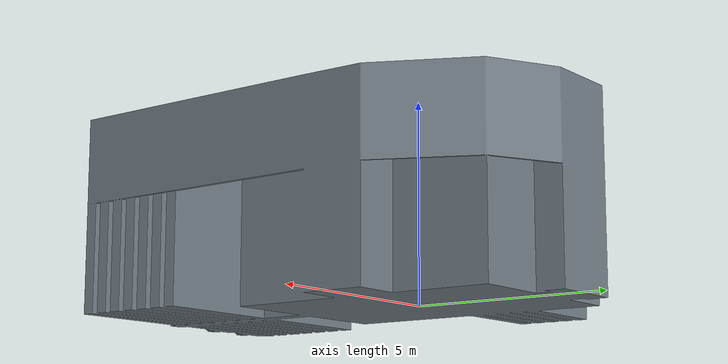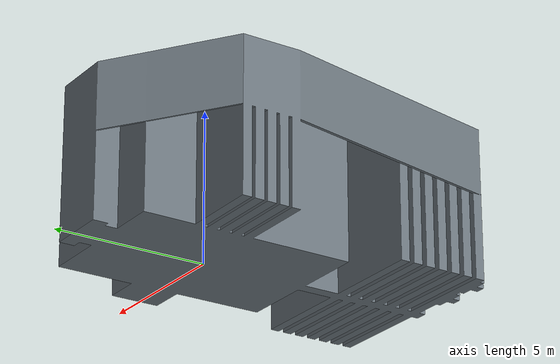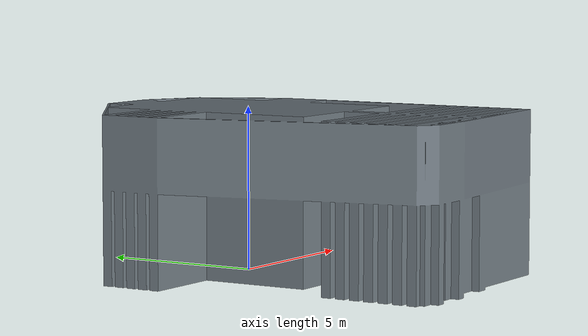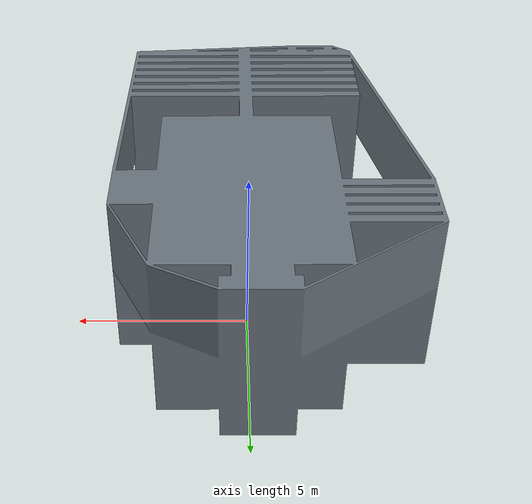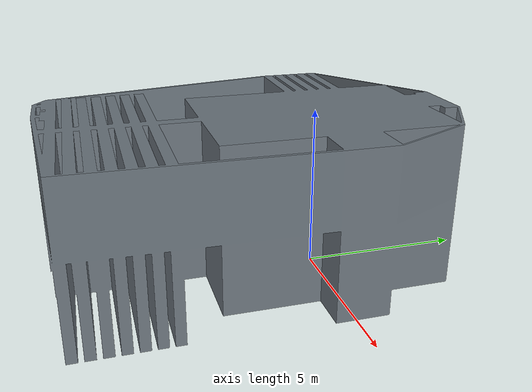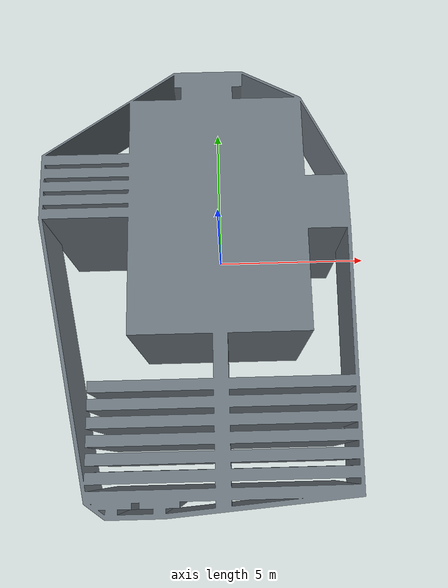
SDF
<?xml version="1.0"?>
<sdf version="1.6">

  <model name="transformer_model">

    <static>true</static>

    <link name="transformer_link">

      <visual name="transformer_visual">

        <geometry>
          <mesh>

            <uri>
              model://transformer_model/meshes/Transformer.stl
            </uri>

            <scale>1 1 1</scale>

          </mesh>
        </geometry>

        <material>
          <ambient>0.34 0.37 0.39 1</ambient>
          <diffuse>0.42 0.46 0.49 1</diffuse>
          <specular>0.12 0.12 0.12 1</specular>
        </material>

      </visual>

      <collision name="transformer_collision">

        <geometry>
          <mesh>

            <uri>
              model://transformer_model/meshes/Transformer.stl
            </uri>

            <scale>1 1 1</scale>

          </mesh>
        </geometry>

      </collision>

    </link>

  </model>

</sdf>
